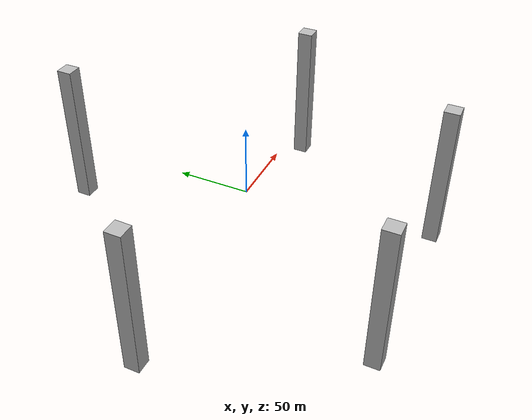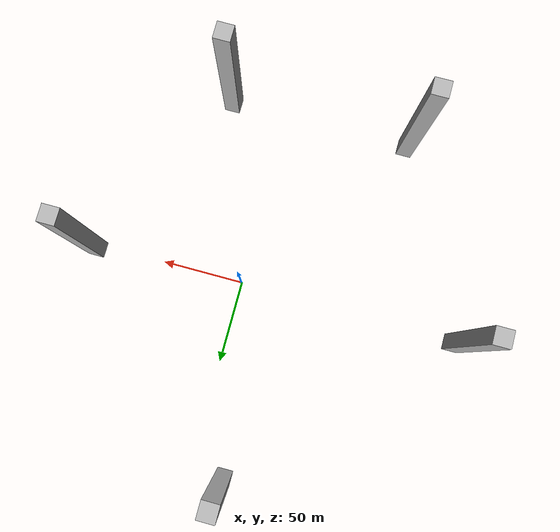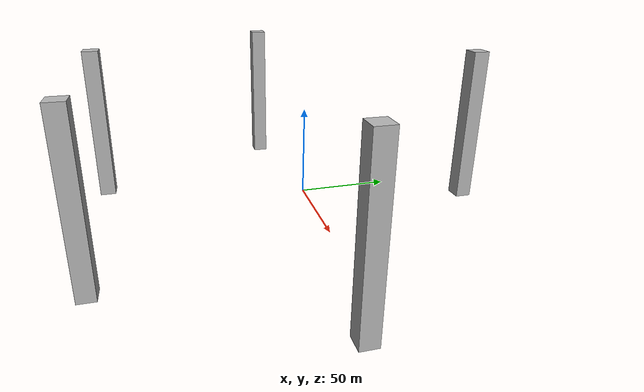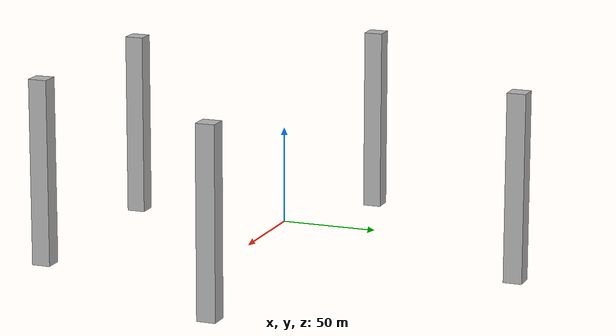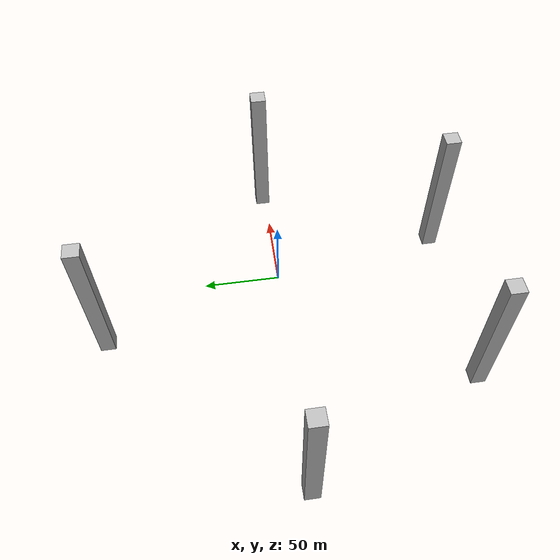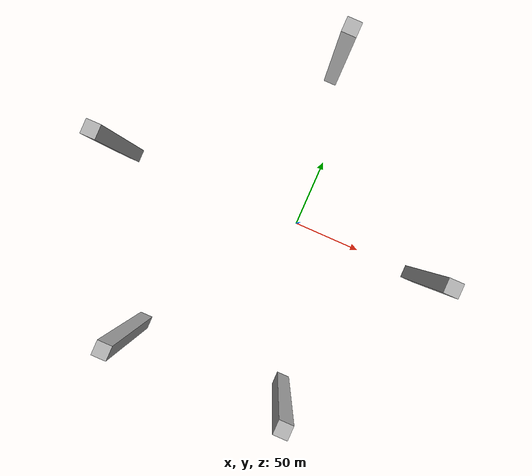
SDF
<sdf version="1.6">
 <world name="default">
  <scene><shadows>false</shadows></scene>
  <include><uri>model://sun</uri></include>
  <include><uri>model://tall_cuboid</uri><pose>40 -120 0 0 0 0</pose></include>
  <include><uri>model://tall_cuboid</uri><pose>100 0 0 0 0 0</pose></include>
  <include><uri>model://tall_cuboid</uri><pose>-20 120 0 0 0 0</pose></include>
  <include><uri>model://tall_cuboid</uri><pose>-140 0 0 0 0 0</pose></include>
  <include><uri>model://tall_cuboid</uri><pose>-80 -120 0 0 0 0</pose></include>
  <physics type="ode">
   <ode>
    <solver><type>quick</type><iters>100</iters><sor>1.0</sor></solver>
    <constraints>
     <cfm>0.0</cfm>
     <erp>0.2</erp>
     <contact_max_correcting_vel>0.1</contact_max_correcting_vel>
     <contact_surface_layer>0.0</contact_surface_layer>
    </constraints>
   </ode>
   <real_time_update_rate>-1</real_time_update_rate>
  </physics>
  <gravity>0 0 -9.8</gravity>
 </world>
</sdf>

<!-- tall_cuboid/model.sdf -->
<sdf version="1.6">
  <model name="tall_cuboid">
    <static>true</static>
    <link name="link">
      <pose>0 0 25 0 0 0</pose>
      <collision name="collision">
        <geometry>
          <box>
            <size>10 10 100</size>
          </box>
        </geometry>
      </collision>
      <visual name='visual'>
        <geometry>
          <box>
            <size>10 10 100</size>
          </box>
        </geometry>
      </visual>
    </link>
  </model>
</sdf>
